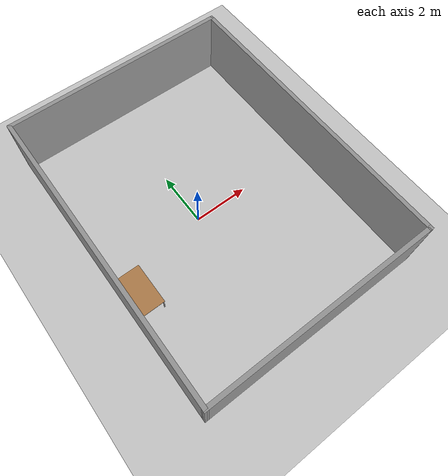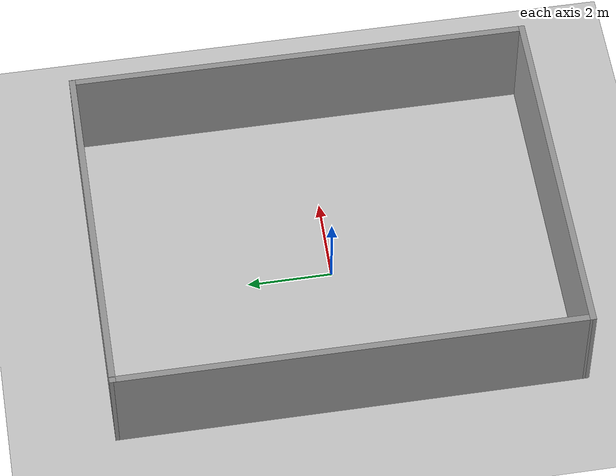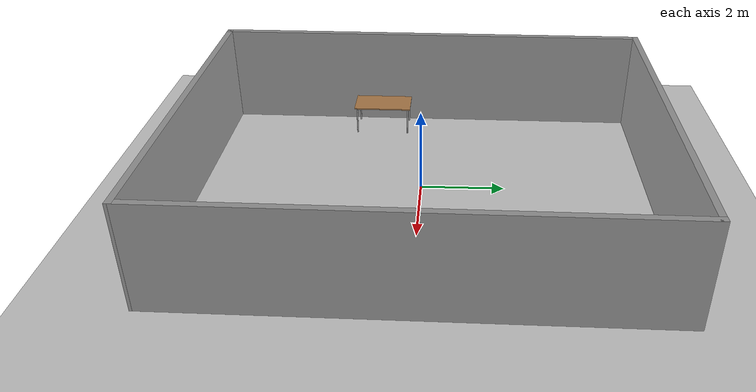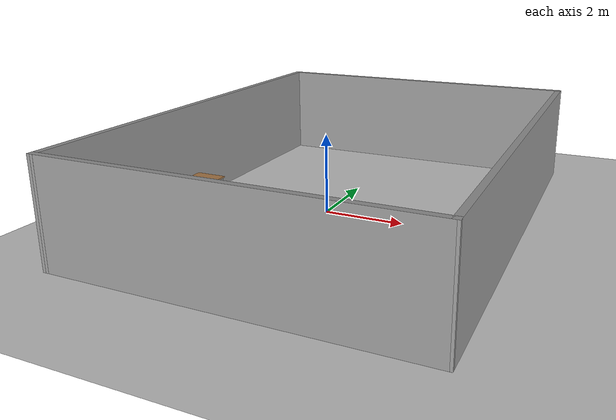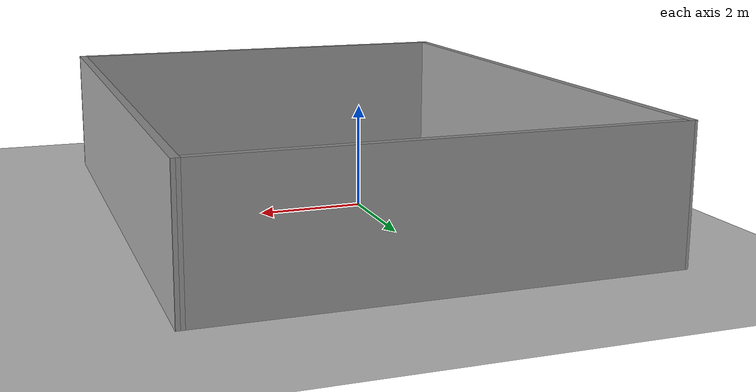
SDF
<sdf version="1.7">
 <world name="default">
  <light name="sun" type="directional">
   <pose>0 0 10 0 -0 0</pose>
   <diffuse>0.8 0.8 0.8 1</diffuse>
   <specular>0.2 0.2 0.2 1</specular>
   <attenuation>
    <range>1000</range>
    <constant>0.9</constant>
    <linear>0.01</linear>
    <quadratic>0.001</quadratic>
   </attenuation>
   <direction>-0.5 0.1 -0.9</direction>
   <spot><inner_angle>0</inner_angle><outer_angle>0</outer_angle><falloff>0</falloff></spot>
  </light>
  <model name="ground_plane">
   <static>1</static>
   <link name="link">
    <collision name="collision">
     <geometry><plane><normal>0 0 1</normal><size>100 100</size></plane></geometry>
     <surface>
      <contact><collide_bitmask>65535</collide_bitmask></contact>
      <friction><ode><mu>100</mu><mu2>50</mu2></ode></friction>
     </surface>
    </collision>
    <visual name="visual">
     <cast_shadows>0</cast_shadows>
     <geometry><plane><normal>0 0 1</normal><size>100 100</size></plane></geometry>
     <material>
      <script><uri>file://media/materials/scripts/gazebo.material</uri><name>Gazebo/Grey</name></script>
     </material>
    </visual>
   </link>
  </model>
  <gravity>0 0 -9.8</gravity>
  <magnetic_field>6e-06 2.3e-05 -4.2e-05</magnetic_field>
  <atmosphere type="adiabatic"/>
  <physics type="ode">
   <max_step_size>0.001</max_step_size>
   <real_time_factor>1</real_time_factor>
   <real_time_update_rate>1000</real_time_update_rate>
  </physics>
  <scene><ambient>0.4 0.4 0.4 1</ambient><background>0.7 0.7 0.7 1</background><shadows>1</shadows></scene>
  <spherical_coordinates>
   <surface_model>EARTH_WGS84</surface_model>
   <latitude_deg>0</latitude_deg>
   <longitude_deg>0</longitude_deg>
   <elevation>0</elevation>
   <heading_deg>0</heading_deg>
  </spherical_coordinates>
  <model name="wall2">
   <pose>0.504384 0.0689 0 0 -0 0</pose>
   <link name="Wall_10">
    <collision name="Wall_10_Collision">
     <geometry><box><size>8.5 0.15 2.5</size></box></geometry>
     <pose>0 0 1.25 0 -0 0</pose>
    </collision>
    <visual name="Wall_10_Visual">
     <pose>0 0 1.25 0 -0 0</pose>
     <geometry><box><size>8.5 0.15 2.5</size></box></geometry>
     <material>
      <script><uri>file://media/materials/scripts/gazebo.material</uri><name>Gazebo/Grey</name></script>
      <ambient>1 1 1 1</ambient>
     </material>
     <meta><layer>0</layer></meta>
    </visual>
    <pose>-0.009885 -5.42171 0 0 -0 3.14159</pose>
   </link>
   <link name="Wall_11">
    <collision name="Wall_11_Collision">
     <geometry><box><size>10.9934 0.15 2.5</size></box></geometry>
     <pose>0 0 1.25 0 -0 0</pose>
    </collision>
    <visual name="Wall_11_Visual">
     <pose>0 0 1.25 0 -0 0</pose>
     <geometry><box><size>10.9934 0.15 2.5</size></box></geometry>
     <material>
      <script><uri>file://media/materials/scripts/gazebo.material</uri><name>Gazebo/Grey</name></script>
      <ambient>1 1 1 1</ambient>
     </material>
     <meta><layer>0</layer></meta>
    </visual>
    <pose>-4.17831 0 0 0 -0 1.56958</pose>
   </link>
   <link name="Wall_15">
    <collision name="Wall_15_Collision">
     <geometry><box><size>10.9934 0.15 2.5</size></box></geometry>
     <pose>0 0 1.25 0 -0 0</pose>
    </collision>
    <visual name="Wall_15_Visual">
     <pose>0 0 1.25 0 -0 0</pose>
     <geometry><box><size>10.9934 0.15 2.5</size></box></geometry>
     <material>
      <script><uri>file://media/materials/scripts/gazebo.material</uri><name>Gazebo/Grey</name></script>
      <ambient>1 1 1 1</ambient>
     </material>
     <meta><layer>0</layer></meta>
    </visual>
    <pose>4.17498 0 0 0 -0 1.56898</pose>
   </link>
   <link name="Wall_16">
    <collision name="Wall_16_Collision">
     <geometry><box><size>8.5 0.15 2.5</size></box></geometry>
     <pose>0 0 1.25 0 -0 0</pose>
    </collision>
    <visual name="Wall_16_Visual">
     <pose>0 0 1.25 0 -0 0</pose>
     <geometry><box><size>8.5 0.15 2.5</size></box></geometry>
     <material>
      <script><uri>file://media/materials/scripts/gazebo.material</uri><name>Gazebo/Grey</name></script>
      <ambient>1 1 1 1</ambient>
     </material>
     <meta><layer>0</layer></meta>
    </visual>
    <pose>0.003265 5.42171 0 0 -0 3.14159</pose>
   </link>
   <static>1</static>
  </model>
  <model name="tablecaaarrol">
   <link name="link">
    <inertial>
     <inertia><ixx>0</ixx><ixy>0</ixy><ixz>0</ixz><iyy>0</iyy><iyz>0</iyz><izz>0</izz></inertia>
     <mass>0</mass>
    </inertial>
    <visual name="visual1">
     <pose>0 0 0.7 0 -0 0</pose>
     <geometry><box><size>1.5 0.8 0.030001</size></box></geometry>
     <material>
      <script><uri>file://media/materials/scripts/gazebo.material</uri><name>Gazebo/Wood</name></script>
      <shader type="pixel"><normal_map>__default__</normal_map></shader>
      <ambient>1 1 1 1</ambient>
      <diffuse>1 1 1 1</diffuse>
      <specular>0.2 0.2 0.2 1</specular>
      <emissive>0 0 0 1</emissive>
     </material>
    </visual>
    <visual name="front_left_leg">
     <pose>0.68 0.38 0.19 0 -0 0</pose>
     <geometry><cylinder><radius>0.02</radius><length>1</length></cylinder></geometry>
     <material>
      <script><uri>file://media/materials/scripts/gazebo.material</uri><name>Gazebo/Grey</name></script>
      <shader type="pixel"><normal_map>__default__</normal_map></shader>
      <ambient>0.3 0.3 0.3 1</ambient>
      <diffuse>0.7 0.7 0.7 1</diffuse>
      <specular>0.01 0.01 0.01 1</specular>
      <emissive>0 0 0 1</emissive>
     </material>
    </visual>
    <visual name="front_right_leg">
     <pose>0.68 -0.38 0.19 0 -0 0</pose>
     <geometry><cylinder><radius>0.02</radius><length>1</length></cylinder></geometry>
     <material>
      <script><uri>file://media/materials/scripts/gazebo.material</uri><name>Gazebo/Grey</name></script>
      <shader type="pixel"><normal_map>__default__</normal_map></shader>
      <ambient>0.3 0.3 0.3 1</ambient>
      <diffuse>0.7 0.7 0.7 1</diffuse>
      <specular>0.01 0.01 0.01 1</specular>
      <emissive>0 0 0 1</emissive>
     </material>
    </visual>
    <visual name="back_right_leg">
     <pose>-0.68 -0.38 0.19 0 -0 0</pose>
     <geometry><cylinder><radius>0.02</radius><length>1</length></cylinder></geometry>
     <material>
      <script><uri>file://media/materials/scripts/gazebo.material</uri><name>Gazebo/Grey</name></script>
      <shader type="pixel"><normal_map>__default__</normal_map></shader>
      <ambient>0.3 0.3 0.3 1</ambient>
      <diffuse>0.7 0.7 0.7 1</diffuse>
      <specular>0.01 0.01 0.01 1</specular>
      <emissive>0 0 0 1</emissive>
     </material>
    </visual>
    <visual name="back_left_leg">
     <pose>-0.68 0.38 0.19 0 -0 0</pose>
     <geometry><cylinder><radius>0.02</radius><length>1</length></cylinder></geometry>
     <material>
      <script><uri>file://media/materials/scripts/gazebo.material</uri><name>Gazebo/Grey</name></script>
      <shader type="pixel"><normal_map>__default__</normal_map></shader>
      <ambient>0.3 0.3 0.3 1</ambient>
      <diffuse>0.7 0.7 0.7 1</diffuse>
      <specular>0.01 0.01 0.01 1</specular>
      <emissive>0 0 0 1</emissive>
     </material>
    </visual>
    <collision name="surface">
     <pose>0 0 1 0 -0 0</pose>
     <geometry><box><size>1.5 0.8 0.030001</size></box></geometry>
     <surface>
      <friction>
       <ode><mu>0.6</mu><mu2>0.6</mu2><fdir1>0 0 0</fdir1><slip1>0</slip1><slip2>0</slip2></ode>
       <torsional>
        <coefficient>1</coefficient>
        <patch_radius>0</patch_radius>
        <surface_radius>0</surface_radius>
        <use_patch_radius>1</use_patch_radius>
        <ode><slip>0</slip></ode>
       </torsional>
      </friction>
      <bounce><restitution_coefficient>0</restitution_coefficient><threshold>1e+06</threshold></bounce>
      <contact>
       <collide_without_contact>0</collide_without_contact>
       <collide_without_contact_bitmask>1</collide_without_contact_bitmask>
       <collide_bitmask>1</collide_bitmask>
       <ode>
        <soft_cfm>0</soft_cfm>
        <soft_erp>0.2</soft_erp>
        <kp>1e+13</kp>
        <kd>1</kd>
        <max_vel>0.01</max_vel>
        <min_depth>0</min_depth>
       </ode>
       <bullet>
        <split_impulse>1</split_impulse>
        <split_impulse_penetration_threshold>-0.01</split_impulse_penetration_threshold>
        <soft_cfm>0</soft_cfm>
        <soft_erp>0.2</soft_erp>
        <kp>1e+13</kp>
        <kd>1</kd>
       </bullet>
      </contact>
     </surface>
    </collision>
    <collision name="front_left_leg">
     <pose>0.68 0.38 0.5 0 -0 0</pose>
     <geometry><cylinder><radius>0.02</radius><length>1</length></cylinder></geometry>
     <surface>
      <friction>
       <ode><mu>1</mu><mu2>1</mu2><fdir1>0 0 0</fdir1><slip1>0</slip1><slip2>0</slip2></ode>
       <torsional>
        <coefficient>1</coefficient>
        <patch_radius>0</patch_radius>
        <surface_radius>0</surface_radius>
        <use_patch_radius>1</use_patch_radius>
        <ode><slip>0</slip></ode>
       </torsional>
      </friction>
      <bounce><restitution_coefficient>0</restitution_coefficient><threshold>1e+06</threshold></bounce>
      <contact>
       <collide_without_contact>0</collide_without_contact>
       <collide_without_contact_bitmask>1</collide_without_contact_bitmask>
       <collide_bitmask>1</collide_bitmask>
       <ode>
        <soft_cfm>0</soft_cfm>
        <soft_erp>0.2</soft_erp>
        <kp>1e+13</kp>
        <kd>1</kd>
        <max_vel>0.01</max_vel>
        <min_depth>0</min_depth>
       </ode>
       <bullet>
        <split_impulse>1</split_impulse>
        <split_impulse_penetration_threshold>-0.01</split_impulse_penetration_threshold>
        <soft_cfm>0</soft_cfm>
        <soft_erp>0.2</soft_erp>
        <kp>1e+13</kp>
        <kd>1</kd>
       </bullet>
      </contact>
     </surface>
    </collision>
    <collision name="front_right_leg">
     <pose>0.68 -0.38 0.5 0 -0 0</pose>
     <geometry><cylinder><radius>0.02</radius><length>1</length></cylinder></geometry>
     <surface>
      <friction>
       <ode><mu>1</mu><mu2>1</mu2><fdir1>0 0 0</fdir1><slip1>0</slip1><slip2>0</slip2></ode>
       <torsional>
        <coefficient>1</coefficient>
        <patch_radius>0</patch_radius>
        <surface_radius>0</surface_radius>
        <use_patch_radius>1</use_patch_radius>
        <ode><slip>0</slip></ode>
       </torsional>
      </friction>
      <bounce><restitution_coefficient>0</restitution_coefficient><threshold>1e+06</threshold></bounce>
      <contact>
       <collide_without_contact>0</collide_without_contact>
       <collide_without_contact_bitmask>1</collide_without_contact_bitmask>
       <collide_bitmask>1</collide_bitmask>
       <ode>
        <soft_cfm>0</soft_cfm>
        <soft_erp>0.2</soft_erp>
        <kp>1e+13</kp>
        <kd>1</kd>
        <max_vel>0.01</max_vel>
        <min_depth>0</min_depth>
       </ode>
       <bullet>
        <split_impulse>1</split_impulse>
        <split_impulse_penetration_threshold>-0.01</split_impulse_penetration_threshold>
        <soft_cfm>0</soft_cfm>
        <soft_erp>0.2</soft_erp>
        <kp>1e+13</kp>
        <kd>1</kd>
       </bullet>
      </contact>
     </surface>
    </collision>
    <collision name="back_right_leg">
     <pose>-0.68 -0.38 0.5 0 -0 0</pose>
     <geometry><cylinder><radius>0.02</radius><length>1</length></cylinder></geometry>
     <surface>
      <friction>
       <ode><mu>1</mu><mu2>1</mu2><fdir1>0 0 0</fdir1><slip1>0</slip1><slip2>0</slip2></ode>
       <torsional>
        <coefficient>1</coefficient>
        <patch_radius>0</patch_radius>
        <surface_radius>0</surface_radius>
        <use_patch_radius>1</use_patch_radius>
        <ode><slip>0</slip></ode>
       </torsional>
      </friction>
      <bounce><restitution_coefficient>0</restitution_coefficient><threshold>1e+06</threshold></bounce>
      <contact>
       <collide_without_contact>0</collide_without_contact>
       <collide_without_contact_bitmask>1</collide_without_contact_bitmask>
       <collide_bitmask>1</collide_bitmask>
       <ode>
        <soft_cfm>0</soft_cfm>
        <soft_erp>0.2</soft_erp>
        <kp>1e+13</kp>
        <kd>1</kd>
        <max_vel>0.01</max_vel>
        <min_depth>0</min_depth>
       </ode>
       <bullet>
        <split_impulse>1</split_impulse>
        <split_impulse_penetration_threshold>-0.01</split_impulse_penetration_threshold>
        <soft_cfm>0</soft_cfm>
        <soft_erp>0.2</soft_erp>
        <kp>1e+13</kp>
        <kd>1</kd>
       </bullet>
      </contact>
     </surface>
    </collision>
    <collision name="back_left_leg">
     <pose>-0.68 0.38 0.5 0 -0 0</pose>
     <geometry><cylinder><radius>0.02</radius><length>1</length></cylinder></geometry>
     <surface>
      <friction>
       <ode><mu>1</mu><mu2>1</mu2><fdir1>0 0 0</fdir1><slip1>0</slip1><slip2>0</slip2></ode>
       <torsional>
        <coefficient>1</coefficient>
        <patch_radius>0</patch_radius>
        <surface_radius>0</surface_radius>
        <use_patch_radius>1</use_patch_radius>
        <ode><slip>0</slip></ode>
       </torsional>
      </friction>
      <bounce><restitution_coefficient>0</restitution_coefficient><threshold>1e+06</threshold></bounce>
      <contact>
       <collide_without_contact>0</collide_without_contact>
       <collide_without_contact_bitmask>1</collide_without_contact_bitmask>
       <collide_bitmask>1</collide_bitmask>
       <ode>
        <soft_cfm>0</soft_cfm>
        <soft_erp>0.2</soft_erp>
        <kp>1e+13</kp>
        <kd>1</kd>
        <max_vel>0.01</max_vel>
        <min_depth>0</min_depth>
       </ode>
       <bullet>
        <split_impulse>1</split_impulse>
        <split_impulse_penetration_threshold>-0.01</split_impulse_penetration_threshold>
        <soft_cfm>0</soft_cfm>
        <soft_erp>0.2</soft_erp>
        <kp>1e+13</kp>
        <kd>1</kd>
       </bullet>
      </contact>
     </surface>
    </collision>
   </link>
   <static>1</static>
   <pose>-3.11138 -1.18657 0 0 0 -1.5708</pose>
  </model>
 </world>
</sdf>
